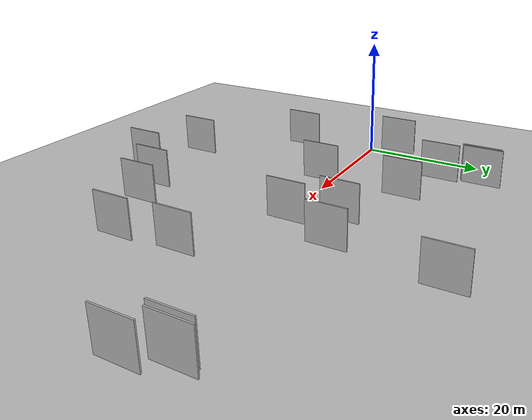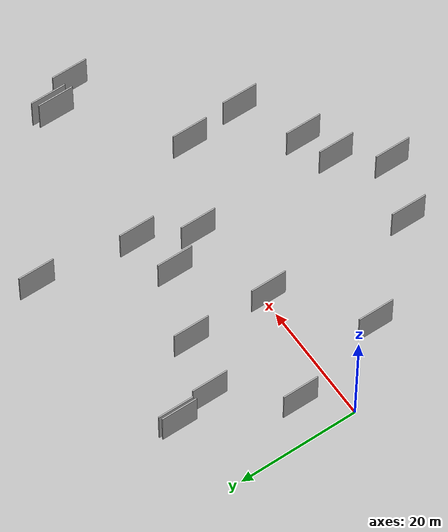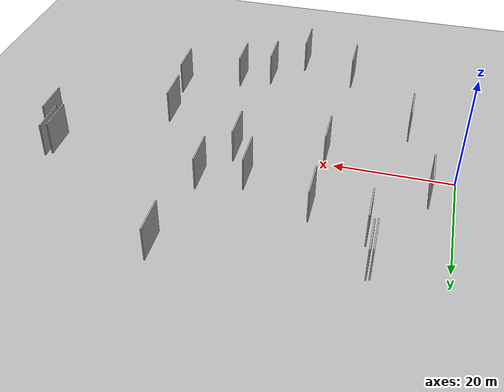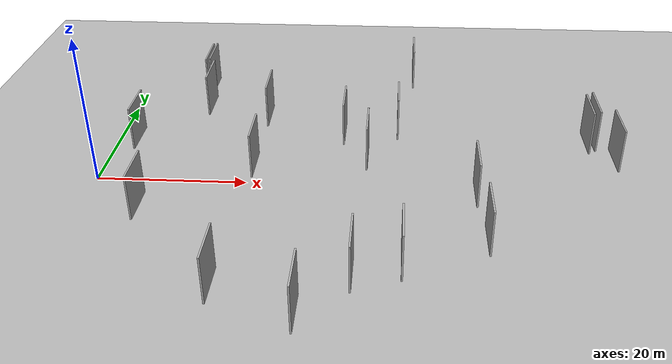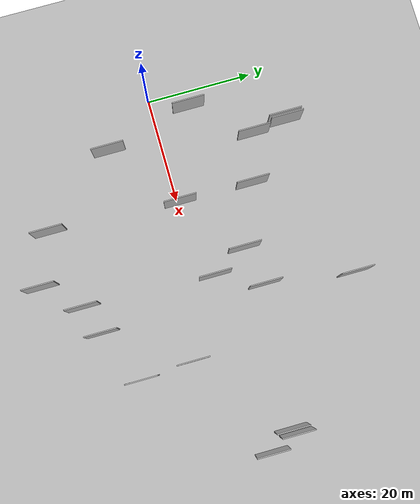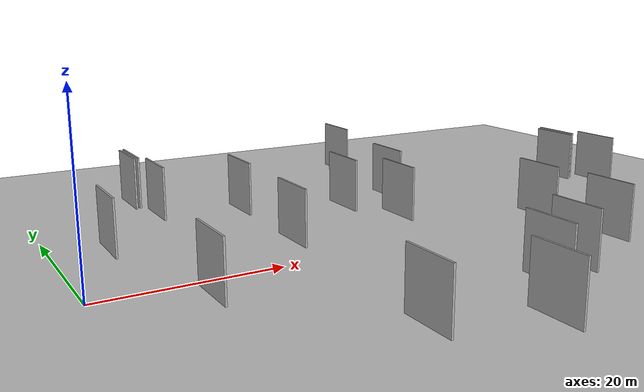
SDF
<?xml version="1.0" encoding="utf-8"?>

<sdf version="1.6">

   <world name="default">

      <gui fullscreen="0">

         <camera name="user_camera">

            <pose>-15 0 4.57585 0 0 0</pose>

            <view_controller>orbit</view_controller>

         </camera>

      </gui>

      <scene>

         <sky>

           <clouds>

             <speed>12</speed>

           </clouds>

         </sky>

         <ambient>0.4 0.4 0.4 1</ambient>

         <background>0.7 0.7 0.7 1</background>

         <shadows>1</shadows>

      </scene>

      <gravity>0 0 -9.8066</gravity>

      <magnetic_field>6e-06 2.3e-05 -4.2e-05</magnetic_field>

      <physics default="0" name="default_physics" type="ode">

         <ode>

            <solver>

               <type>quick</type>

               <iters>10</iters>

               <sor>1.0</sor>

               <use_dynamic_moi_rescaling>0</use_dynamic_moi_rescaling>

            </solver>

            <constraints>

               <cfm>0</cfm>

               <erp>0.2</erp>

               <contact_max_correcting_vel>100</contact_max_correcting_vel>

               <contact_surface_layer>0.001</contact_surface_layer>

            </constraints>

         </ode>

         <max_step_size>0.004</max_step_size>

         <real_time_factor>1</real_time_factor>

         <real_time_update_rate>250</real_time_update_rate>

      </physics>

      <light name="sun" type="directional">

         <cast_shadows>1</cast_shadows>

         <pose>0 0 10 0 0 0</pose>

         <diffuse>0.8 0.8 0.8 1</diffuse>

         <specular>0.2 0.2 0.2 1</specular>

         <attenuation>

            <range>1000</range>

            <constant>0.9</constant>

            <linear>0.01</linear>

            <quadratic>0.001</quadratic>

         </attenuation>

         <direction>-0.5 0.1 -0.9</direction>

      </light>

      <include>

         <name>ground_plane_1</name>

         <uri>model://HANNAS_ground_plane</uri>

         <pose>0 0 0  0 0 0</pose>

      </include>

      <include>

         <name>ground_plane_2</name>

         <uri>model://HANNAS_ground_plane</uri>

         <pose>100 0 0  0 0 0</pose>

      </include>

      <model name="HANNAS_wall_1">

         <static>1</static>

         <pose frame="">11.1036 23.1670 2.5 0.000000 0.000000 1.570796</pose>

         <link name="link">

            <pose frame="">0 0 3.00 0 0 0</pose>

            <collision name="collision">

               <geometry>

                  <box>

                     <size>6.00 0.2 6.00</size>

                  </box>

               </geometry>

               <max_contacts>10</max_contacts>

               <surface>

                  <contact>

                     <ode/>

                  </contact>

                  <bounce/>

                  <friction>

                     <torsional>

                        <ode/>

                     </torsional>

                     <ode/>

                  </friction>

               </surface>

            </collision>

            <visual name="visual">

               <cast_shadows>0</cast_shadows>

               <geometry>

                  <box>

                     <size>6.00 0.2 6.00</size>

                  </box>

               </geometry>

               <material>

                  <script>

                     <uri>model://HANNAS_wall/materials/scripts</uri>

                     <uri>model://HANNAS_wall/materials/textures</uri>

                     <name>vrc/HANNAS_wall</name>

                  </script>

               </material>

            </visual>

            <self_collide>0</self_collide>

            <enable_wind>0</enable_wind>

            <kinematic>0</kinematic>

         </link>

      </model>

      <model name="HANNAS_wall_2">

         <static>1</static>

         <pose frame="">66.5422 9.2065 2.5 0.000000 0.000000 1.570796</pose>

         <link name="link">

            <pose frame="">0 0 3.00 0 0 0</pose>

            <collision name="collision">

               <geometry>

                  <box>

                     <size>6.00 0.2 6.00</size>

                  </box>

               </geometry>

               <max_contacts>10</max_contacts>

               <surface>

                  <contact>

                     <ode/>

                  </contact>

                  <bounce/>

                  <friction>

                     <torsional>

                        <ode/>

                     </torsional>

                     <ode/>

                  </friction>

               </surface>

            </collision>

            <visual name="visual">

               <cast_shadows>0</cast_shadows>

               <geometry>

                  <box>

                     <size>6.00 0.2 6.00</size>

                  </box>

               </geometry>

               <material>

                  <script>

                     <uri>model://HANNAS_wall/materials/scripts</uri>

                     <uri>model://HANNAS_wall/materials/textures</uri>

                     <name>vrc/HANNAS_wall</name>

                  </script>

               </material>

            </visual>

            <self_collide>0</self_collide>

            <enable_wind>0</enable_wind>

            <kinematic>0</kinematic>

         </link>

      </model>

      <model name="HANNAS_wall_3">

         <static>1</static>

         <pose frame="">40.5682 -19.1948 2.5 0.000000 0.000000 1.570796</pose>

         <link name="link">

            <pose frame="">0 0 3.00 0 0 0</pose>

            <collision name="collision">

               <geometry>

                  <box>

                     <size>6.00 0.2 6.00</size>

                  </box>

               </geometry>

               <max_contacts>10</max_contacts>

               <surface>

                  <contact>

                     <ode/>

                  </contact>

                  <bounce/>

                  <friction>

                     <torsional>

                        <ode/>

                     </torsional>

                     <ode/>

                  </friction>

               </surface>

            </collision>

            <visual name="visual">

               <cast_shadows>0</cast_shadows>

               <geometry>

                  <box>

                     <size>6.00 0.2 6.00</size>

                  </box>

               </geometry>

               <material>

                  <script>

                     <uri>model://HANNAS_wall/materials/scripts</uri>

                     <uri>model://HANNAS_wall/materials/textures</uri>

                     <name>vrc/HANNAS_wall</name>

                  </script>

               </material>

            </visual>

            <self_collide>0</self_collide>

            <enable_wind>0</enable_wind>

            <kinematic>0</kinematic>

         </link>

      </model>

      <model name="HANNAS_wall_4">

         <static>1</static>

         <pose frame="">49.6750 -4.9144 2.5 0.000000 0.000000 1.570796</pose>

         <link name="link">

            <pose frame="">0 0 3.00 0 0 0</pose>

            <collision name="collision">

               <geometry>

                  <box>

                     <size>6.00 0.2 6.00</size>

                  </box>

               </geometry>

               <max_contacts>10</max_contacts>

               <surface>

                  <contact>

                     <ode/>

                  </contact>

                  <bounce/>

                  <friction>

                     <torsional>

                        <ode/>

                     </torsional>

                     <ode/>

                  </friction>

               </surface>

            </collision>

            <visual name="visual">

               <cast_shadows>0</cast_shadows>

               <geometry>

                  <box>

                     <size>6.00 0.2 6.00</size>

                  </box>

               </geometry>

               <material>

                  <script>

                     <uri>model://HANNAS_wall/materials/scripts</uri>

                     <uri>model://HANNAS_wall/materials/textures</uri>

                     <name>vrc/HANNAS_wall</name>

                  </script>

               </material>

            </visual>

            <self_collide>0</self_collide>

            <enable_wind>0</enable_wind>

            <kinematic>0</kinematic>

         </link>

      </model>

      <model name="HANNAS_wall_5">

         <static>1</static>

         <pose frame="">42.1388 27.3576 2.5 0.000000 0.000000 1.570796</pose>

         <link name="link">

            <pose frame="">0 0 3.00 0 0 0</pose>

            <collision name="collision">

               <geometry>

                  <box>

                     <size>6.00 0.2 6.00</size>

                  </box>

               </geometry>

               <max_contacts>10</max_contacts>

               <surface>

                  <contact>

                     <ode/>

                  </contact>

                  <bounce/>

                  <friction>

                     <torsional>

                        <ode/>

                     </torsional>

                     <ode/>

                  </friction>

               </surface>

            </collision>

            <visual name="visual">

               <cast_shadows>0</cast_shadows>

               <geometry>

                  <box>

                     <size>6.00 0.2 6.00</size>

                  </box>

               </geometry>

               <material>

                  <script>

                     <uri>model://HANNAS_wall/materials/scripts</uri>

                     <uri>model://HANNAS_wall/materials/textures</uri>

                     <name>vrc/HANNAS_wall</name>

                  </script>

               </material>

            </visual>

            <self_collide>0</self_collide>

            <enable_wind>0</enable_wind>

            <kinematic>0</kinematic>

         </link>

      </model>

      <model name="HANNAS_wall_6">

         <static>1</static>

         <pose frame="">4.1784 6.8211 2.5 0.000000 0.000000 1.570796</pose>

         <link name="link">

            <pose frame="">0 0 3.00 0 0 0</pose>

            <collision name="collision">

               <geometry>

                  <box>

                     <size>6.00 0.2 6.00</size>

                  </box>

               </geometry>

               <max_contacts>10</max_contacts>

               <surface>

                  <contact>

                     <ode/>

                  </contact>

                  <bounce/>

                  <friction>

                     <torsional>

                        <ode/>

                     </torsional>

                     <ode/>

                  </friction>

               </surface>

            </collision>

            <visual name="visual">

               <cast_shadows>0</cast_shadows>

               <geometry>

                  <box>

                     <size>6.00 0.2 6.00</size>

                  </box>

               </geometry>

               <material>

                  <script>

                     <uri>model://HANNAS_wall/materials/scripts</uri>

                     <uri>model://HANNAS_wall/materials/textures</uri>

                     <name>vrc/HANNAS_wall</name>

                  </script>

               </material>

            </visual>

            <self_collide>0</self_collide>

            <enable_wind>0</enable_wind>

            <kinematic>0</kinematic>

         </link>

      </model>

      <model name="HANNAS_wall_7">

         <static>1</static>

         <pose frame="">12.4203 17.0037 2.5 0.000000 0.000000 1.570796</pose>

         <link name="link">

            <pose frame="">0 0 3.00 0 0 0</pose>

            <collision name="collision">

               <geometry>

                  <box>

                     <size>6.00 0.2 6.00</size>

                  </box>

               </geometry>

               <max_contacts>10</max_contacts>

               <surface>

                  <contact>

                     <ode/>

                  </contact>

                  <bounce/>

                  <friction>

                     <torsional>

                        <ode/>

                     </torsional>

                     <ode/>

                  </friction>

               </surface>

            </collision>

            <visual name="visual">

               <cast_shadows>0</cast_shadows>

               <geometry>

                  <box>

                     <size>6.00 0.2 6.00</size>

                  </box>

               </geometry>

               <material>

                  <script>

                     <uri>model://HANNAS_wall/materials/scripts</uri>

                     <uri>model://HANNAS_wall/materials/textures</uri>

                     <name>vrc/HANNAS_wall</name>

                  </script>

               </material>

            </visual>

            <self_collide>0</self_collide>

            <enable_wind>0</enable_wind>

            <kinematic>0</kinematic>

         </link>

      </model>

      <model name="HANNAS_wall_8">

         <static>1</static>

         <pose frame="">8.4605 -9.5277 2.5 0.000000 0.000000 1.570796</pose>

         <link name="link">

            <pose frame="">0 0 3.00 0 0 0</pose>

            <collision name="collision">

               <geometry>

                  <box>

                     <size>6.00 0.2 6.00</size>

                  </box>

               </geometry>

               <max_contacts>10</max_contacts>

               <surface>

                  <contact>

                     <ode/>

                  </contact>

                  <bounce/>

                  <friction>

                     <torsional>

                        <ode/>

                     </torsional>

                     <ode/>

                  </friction>

               </surface>

            </collision>

            <visual name="visual">

               <cast_shadows>0</cast_shadows>

               <geometry>

                  <box>

                     <size>6.00 0.2 6.00</size>

                  </box>

               </geometry>

               <material>

                  <script>

                     <uri>model://HANNAS_wall/materials/scripts</uri>

                     <uri>model://HANNAS_wall/materials/textures</uri>

                     <name>vrc/HANNAS_wall</name>

                  </script>

               </material>

            </visual>

            <self_collide>0</self_collide>

            <enable_wind>0</enable_wind>

            <kinematic>0</kinematic>

         </link>

      </model>

      <model name="HANNAS_wall_9">

         <static>1</static>

         <pose frame="">20.2135 -23.8576 2.5 0.000000 0.000000 1.570796</pose>

         <link name="link">

            <pose frame="">0 0 3.00 0 0 0</pose>

            <collision name="collision">

               <geometry>

                  <box>

                     <size>6.00 0.2 6.00</size>

                  </box>

               </geometry>

               <max_contacts>10</max_contacts>

               <surface>

                  <contact>

                     <ode/>

                  </contact>

                  <bounce/>

                  <friction>

                     <torsional>

                        <ode/>

                     </torsional>

                     <ode/>

                  </friction>

               </surface>

            </collision>

            <visual name="visual">

               <cast_shadows>0</cast_shadows>

               <geometry>

                  <box>

                     <size>6.00 0.2 6.00</size>

                  </box>

               </geometry>

               <material>

                  <script>

                     <uri>model://HANNAS_wall/materials/scripts</uri>

                     <uri>model://HANNAS_wall/materials/textures</uri>

                     <name>vrc/HANNAS_wall</name>

                  </script>

               </material>

            </visual>

            <self_collide>0</self_collide>

            <enable_wind>0</enable_wind>

            <kinematic>0</kinematic>

         </link>

      </model>

      <model name="HANNAS_wall_10">

         <static>1</static>

         <pose frame="">21.2488 0.5571 2.5 0.000000 0.000000 1.570796</pose>

         <link name="link">

            <pose frame="">0 0 3.00 0 0 0</pose>

            <collision name="collision">

               <geometry>

                  <box>

                     <size>6.00 0.2 6.00</size>

                  </box>

               </geometry>

               <max_contacts>10</max_contacts>

               <surface>

                  <contact>

                     <ode/>

                  </contact>

                  <bounce/>

                  <friction>

                     <torsional>

                        <ode/>

                     </torsional>

                     <ode/>

                  </friction>

               </surface>

            </collision>

            <visual name="visual">

               <cast_shadows>0</cast_shadows>

               <geometry>

                  <box>

                     <size>6.00 0.2 6.00</size>

                  </box>

               </geometry>

               <material>

                  <script>

                     <uri>model://HANNAS_wall/materials/scripts</uri>

                     <uri>model://HANNAS_wall/materials/textures</uri>

                     <name>vrc/HANNAS_wall</name>

                  </script>

               </material>

            </visual>

            <self_collide>0</self_collide>

            <enable_wind>0</enable_wind>

            <kinematic>0</kinematic>

         </link>

      </model>

      <model name="HANNAS_wall_11">

         <static>1</static>

         <pose frame="">29.6830 -27.7446 2.5 0.000000 0.000000 1.570796</pose>

         <link name="link">

            <pose frame="">0 0 3.00 0 0 0</pose>

            <collision name="collision">

               <geometry>

                  <box>

                     <size>6.00 0.2 6.00</size>

                  </box>

               </geometry>

               <max_contacts>10</max_contacts>

               <surface>

                  <contact>

                     <ode/>

                  </contact>

                  <bounce/>

                  <friction>

                     <torsional>

                        <ode/>

                     </torsional>

                     <ode/>

                  </friction>

               </surface>

            </collision>

            <visual name="visual">

               <cast_shadows>0</cast_shadows>

               <geometry>

                  <box>

                     <size>6.00 0.2 6.00</size>

                  </box>

               </geometry>

               <material>

                  <script>

                     <uri>model://HANNAS_wall/materials/scripts</uri>

                     <uri>model://HANNAS_wall/materials/textures</uri>

                     <name>vrc/HANNAS_wall</name>

                  </script>

               </material>

            </visual>

            <self_collide>0</self_collide>

            <enable_wind>0</enable_wind>

            <kinematic>0</kinematic>

         </link>

      </model>

      <model name="HANNAS_wall_12">

         <static>1</static>

         <pose frame="">11.6323 23.4320 2.5 0.000000 0.000000 1.570796</pose>

         <link name="link">

            <pose frame="">0 0 3.00 0 0 0</pose>

            <collision name="collision">

               <geometry>

                  <box>

                     <size>6.00 0.2 6.00</size>

                  </box>

               </geometry>

               <max_contacts>10</max_contacts>

               <surface>

                  <contact>

                     <ode/>

                  </contact>

                  <bounce/>

                  <friction>

                     <torsional>

                        <ode/>

                     </torsional>

                     <ode/>

                  </friction>

               </surface>

            </collision>

            <visual name="visual">

               <cast_shadows>0</cast_shadows>

               <geometry>

                  <box>

                     <size>6.00 0.2 6.00</size>

                  </box>

               </geometry>

               <material>

                  <script>

                     <uri>model://HANNAS_wall/materials/scripts</uri>

                     <uri>model://HANNAS_wall/materials/textures</uri>

                     <name>vrc/HANNAS_wall</name>

                  </script>

               </material>

            </visual>

            <self_collide>0</self_collide>

            <enable_wind>0</enable_wind>

            <kinematic>0</kinematic>

         </link>

      </model>

      <model name="HANNAS_wall_13">

         <static>1</static>

         <pose frame="">21.4101 14.1088 2.5 0.000000 0.000000 1.570796</pose>

         <link name="link">

            <pose frame="">0 0 3.00 0 0 0</pose>

            <collision name="collision">

               <geometry>

                  <box>

                     <size>6.00 0.2 6.00</size>

                  </box>

               </geometry>

               <max_contacts>10</max_contacts>

               <surface>

                  <contact>

                     <ode/>

                  </contact>

                  <bounce/>

                  <friction>

                     <torsional>

                        <ode/>

                     </torsional>

                     <ode/>

                  </friction>

               </surface>

            </collision>

            <visual name="visual">

               <cast_shadows>0</cast_shadows>

               <geometry>

                  <box>

                     <size>6.00 0.2 6.00</size>

                  </box>

               </geometry>

               <material>

                  <script>

                     <uri>model://HANNAS_wall/materials/scripts</uri>

                     <uri>model://HANNAS_wall/materials/textures</uri>

                     <name>vrc/HANNAS_wall</name>

                  </script>

               </material>

            </visual>

            <self_collide>0</self_collide>

            <enable_wind>0</enable_wind>

            <kinematic>0</kinematic>

         </link>

      </model>

      <model name="HANNAS_wall_14">

         <static>1</static>

         <pose frame="">68.5595 4.1075 2.5 0.000000 0.000000 1.570796</pose>

         <link name="link">

            <pose frame="">0 0 3.00 0 0 0</pose>

            <collision name="collision">

               <geometry>

                  <box>

                     <size>6.00 0.2 6.00</size>

                  </box>

               </geometry>

               <max_contacts>10</max_contacts>

               <surface>

                  <contact>

                     <ode/>

                  </contact>

                  <bounce/>

                  <friction>

                     <torsional>

                        <ode/>

                     </torsional>

                     <ode/>

                  </friction>

               </surface>

            </collision>

            <visual name="visual">

               <cast_shadows>0</cast_shadows>

               <geometry>

                  <box>

                     <size>6.00 0.2 6.00</size>

                  </box>

               </geometry>

               <material>

                  <script>

                     <uri>model://HANNAS_wall/materials/scripts</uri>

                     <uri>model://HANNAS_wall/materials/textures</uri>

                     <name>vrc/HANNAS_wall</name>

                  </script>

               </material>

            </visual>

            <self_collide>0</self_collide>

            <enable_wind>0</enable_wind>

            <kinematic>0</kinematic>

         </link>

      </model>

      <model name="HANNAS_wall_15">

         <static>1</static>

         <pose frame="">35.1223 -21.3463 2.5 0.000000 0.000000 1.570796</pose>

         <link name="link">

            <pose frame="">0 0 3.00 0 0 0</pose>

            <collision name="collision">

               <geometry>

                  <box>

                     <size>6.00 0.2 6.00</size>

                  </box>

               </geometry>

               <max_contacts>10</max_contacts>

               <surface>

                  <contact>

                     <ode/>

                  </contact>

                  <bounce/>

                  <friction>

                     <torsional>

                        <ode/>

                     </torsional>

                     <ode/>

                  </friction>

               </surface>

            </collision>

            <visual name="visual">

               <cast_shadows>0</cast_shadows>

               <geometry>

                  <box>

                     <size>6.00 0.2 6.00</size>

                  </box>

               </geometry>

               <material>

                  <script>

                     <uri>model://HANNAS_wall/materials/scripts</uri>

                     <uri>model://HANNAS_wall/materials/textures</uri>

                     <name>vrc/HANNAS_wall</name>

                  </script>

               </material>

            </visual>

            <self_collide>0</self_collide>

            <enable_wind>0</enable_wind>

            <kinematic>0</kinematic>

         </link>

      </model>

      <model name="HANNAS_wall_16">

         <static>1</static>

         <pose frame="">39.8815 11.1920 2.5 0.000000 0.000000 1.570796</pose>

         <link name="link">

            <pose frame="">0 0 3.00 0 0 0</pose>

            <collision name="collision">

               <geometry>

                  <box>

                     <size>6.00 0.2 6.00</size>

                  </box>

               </geometry>

               <max_contacts>10</max_contacts>

               <surface>

                  <contact>

                     <ode/>

                  </contact>

                  <bounce/>

                  <friction>

                     <torsional>

                        <ode/>

                     </torsional>

                     <ode/>

                  </friction>

               </surface>

            </collision>

            <visual name="visual">

               <cast_shadows>0</cast_shadows>

               <geometry>

                  <box>

                     <size>6.00 0.2 6.00</size>

                  </box>

               </geometry>

               <material>

                  <script>

                     <uri>model://HANNAS_wall/materials/scripts</uri>

                     <uri>model://HANNAS_wall/materials/textures</uri>

                     <name>vrc/HANNAS_wall</name>

                  </script>

               </material>

            </visual>

            <self_collide>0</self_collide>

            <enable_wind>0</enable_wind>

            <kinematic>0</kinematic>

         </link>

      </model>

      <model name="HANNAS_wall_17">

         <static>1</static>

         <pose frame="">50.3972 -14.4503 2.5 0.000000 0.000000 1.570796</pose>

         <link name="link">

            <pose frame="">0 0 3.00 0 0 0</pose>

            <collision name="collision">

               <geometry>

                  <box>

                     <size>6.00 0.2 6.00</size>

                  </box>

               </geometry>

               <max_contacts>10</max_contacts>

               <surface>

                  <contact>

                     <ode/>

                  </contact>

                  <bounce/>

                  <friction>

                     <torsional>

                        <ode/>

                     </torsional>

                     <ode/>

                  </friction>

               </surface>

            </collision>

            <visual name="visual">

               <cast_shadows>0</cast_shadows>

               <geometry>

                  <box>

                     <size>6.00 0.2 6.00</size>

                  </box>

               </geometry>

               <material>

                  <script>

                     <uri>model://HANNAS_wall/materials/scripts</uri>

                     <uri>model://HANNAS_wall/materials/textures</uri>

                     <name>vrc/HANNAS_wall</name>

                  </script>

               </material>

            </visual>

            <self_collide>0</self_collide>

            <enable_wind>0</enable_wind>

            <kinematic>0</kinematic>

         </link>

      </model>

      <model name="HANNAS_wall_18">

         <static>1</static>

         <pose frame="">35.9150 2.9865 2.5 0.000000 0.000000 1.570796</pose>

         <link name="link">

            <pose frame="">0 0 3.00 0 0 0</pose>

            <collision name="collision">

               <geometry>

                  <box>

                     <size>6.00 0.2 6.00</size>

                  </box>

               </geometry>

               <max_contacts>10</max_contacts>

               <surface>

                  <contact>

                     <ode/>

                  </contact>

                  <bounce/>

                  <friction>

                     <torsional>

                        <ode/>

                     </torsional>

                     <ode/>

                  </friction>

               </surface>

            </collision>

            <visual name="visual">

               <cast_shadows>0</cast_shadows>

               <geometry>

                  <box>

                     <size>6.00 0.2 6.00</size>

                  </box>

               </geometry>

               <material>

                  <script>

                     <uri>model://HANNAS_wall/materials/scripts</uri>

                     <uri>model://HANNAS_wall/materials/textures</uri>

                     <name>vrc/HANNAS_wall</name>

                  </script>

               </material>

            </visual>

            <self_collide>0</self_collide>

            <enable_wind>0</enable_wind>

            <kinematic>0</kinematic>

         </link>

      </model>

      <model name="HANNAS_wall_19">

         <static>1</static>

         <pose frame="">32.5265 9.4246 2.5 0.000000 0.000000 1.570796</pose>

         <link name="link">

            <pose frame="">0 0 3.00 0 0 0</pose>

            <collision name="collision">

               <geometry>

                  <box>

                     <size>6.00 0.2 6.00</size>

                  </box>

               </geometry>

               <max_contacts>10</max_contacts>

               <surface>

                  <contact>

                     <ode/>

                  </contact>

                  <bounce/>

                  <friction>

                     <torsional>

                        <ode/>

                     </torsional>

                     <ode/>

                  </friction>

               </surface>

            </collision>

            <visual name="visual">

               <cast_shadows>0</cast_shadows>

               <geometry>

                  <box>

                     <size>6.00 0.2 6.00</size>

                  </box>

               </geometry>

               <material>

                  <script>

                     <uri>model://HANNAS_wall/materials/scripts</uri>

                     <uri>model://HANNAS_wall/materials/textures</uri>

                     <name>vrc/HANNAS_wall</name>

                  </script>

               </material>

            </visual>

            <self_collide>0</self_collide>

            <enable_wind>0</enable_wind>

            <kinematic>0</kinematic>

         </link>

      </model>

      <model name="HANNAS_wall_20">

         <static>1</static>

         <pose frame="">65.5849 8.5255 2.5 0.000000 0.000000 1.570796</pose>

         <link name="link">

            <pose frame="">0 0 3.00 0 0 0</pose>

            <collision name="collision">

               <geometry>

                  <box>

                     <size>6.00 0.2 6.00</size>

                  </box>

               </geometry>

               <max_contacts>10</max_contacts>

               <surface>

                  <contact>

                     <ode/>

                  </contact>

                  <bounce/>

                  <friction>

                     <torsional>

                        <ode/>

                     </torsional>

                     <ode/>

                  </friction>

               </surface>

            </collision>

            <visual name="visual">

               <cast_shadows>0</cast_shadows>

               <geometry>

                  <box>

                     <size>6.00 0.2 6.00</size>

                  </box>

               </geometry>

               <material>

                  <script>

                     <uri>model://HANNAS_wall/materials/scripts</uri>

                     <uri>model://HANNAS_wall/materials/textures</uri>

                     <name>vrc/HANNAS_wall</name>

                  </script>

               </material>

            </visual>

            <self_collide>0</self_collide>

            <enable_wind>0</enable_wind>

            <kinematic>0</kinematic>

         </link>

      </model>

   </world>

</sdf>

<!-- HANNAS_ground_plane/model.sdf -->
<sdf version="1.4">
<model name="HANNAS_ground_plane">
  <static>true</static>
    <link name="link">
      <collision name="collision">
        <geometry>
          <plane>
            <normal>0 0 1</normal>
            <size>1000 1000</size>
          </plane>
        </geometry>
        <surface>
          <friction>
            <ode>
              <mu>100</mu>
              <mu2>50</mu2>
            </ode>
          </friction>
        </surface>
      </collision>
      <visual name="visual">
        <cast_shadows>false</cast_shadows>
        <geometry>
          <plane>
            <normal>0 0 1</normal>
            <size>1000 1000</size>
          </plane>
        </geometry>
        <material>
          <script>
            <uri>model://HANNAS_ground_plane/materials/scripts/HANNAS_ground_plane.material</uri>
	    <uri>model://HANNAS_ground_plane/materials/textures</uri>
            <name>HANNASGroundPlane/Image</name>
          </script>
        </material>
      </visual>
    </link>
  </model>
</sdf>
